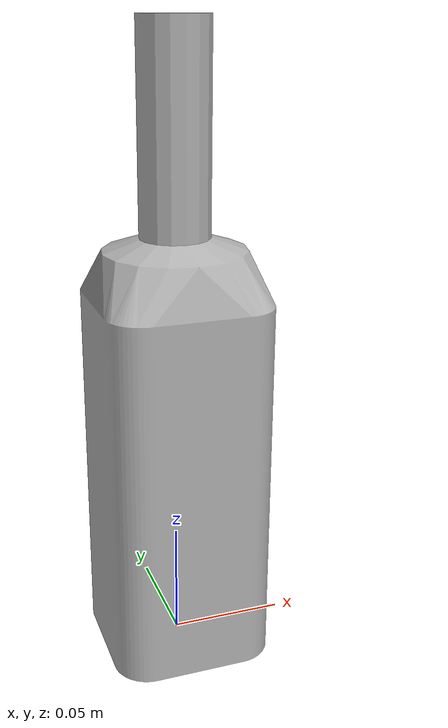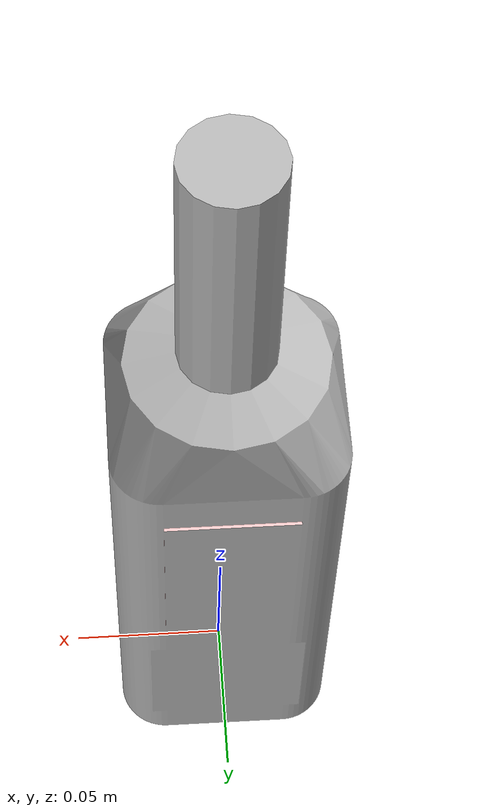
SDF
<?xml version='1.0'?>
<sdf version="1.5">
    <model name='vermouth'>
        <static>false</static>
        <link name="link">
            <inertial>
                <mass>0.100</mass>
                <inertia>
                    <ixx>0.000058</ixx>
                    <ixy>0</ixy>
                    <ixz>0</ixz>
                    <iyy>0.000058</iyy>
                    <iyz>0</iyz>
                    <izz>0.000019</izz>
                </inertia>
            </inertial>
            <visual name="visual">
                <geometry>
                    <mesh>
                        <uri>model://vermouth/vermouth.dae</uri>
                    </mesh>
                </geometry>
            </visual>
            <collision name="collision">
                <pose>0 0 0.135 0 0 0</pose>
                <geometry>
                    <box>
                        <size>0.070 0.070 0.27</size>
                    </box>
                </geometry>
                <surface>
                    <friction>
                        <ode>
                            <mu>0.01</mu>
                            <mu2>0.01</mu2>
                        </ode>
                    </friction>
                </surface>
            </collision>
        </link>
    </model>
</sdf>
